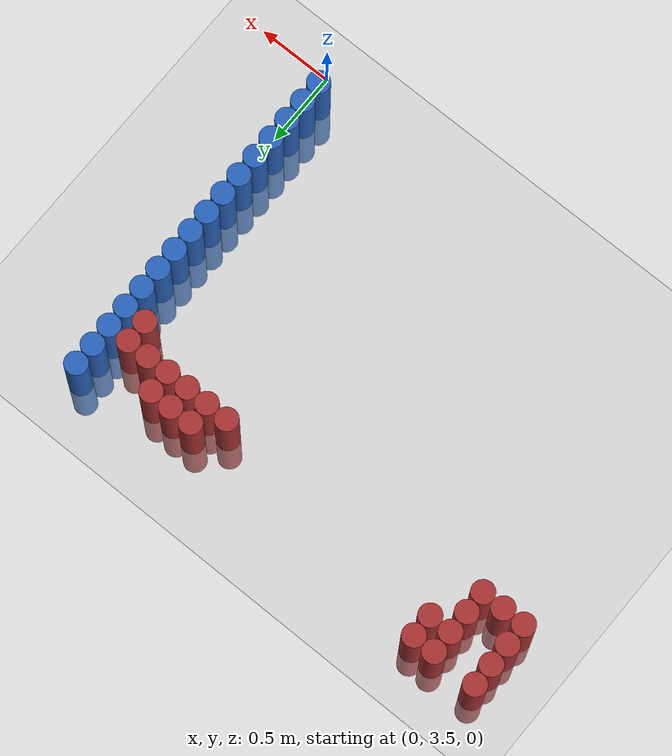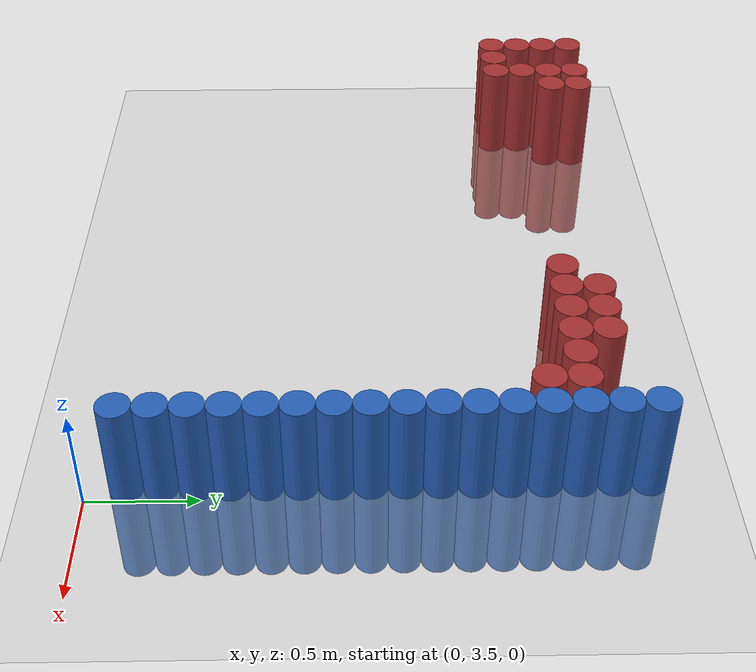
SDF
<sdf version="1.6">
 <world name="default">
  <model name="ground_plane">
   <static>1</static>
   <link name="link">
    <collision name="collision">
     <geometry><plane><normal>0 0 1</normal><size>100 100</size></plane></geometry>
     <surface><friction><ode><mu>100</mu><mu2>50</mu2></ode></friction></surface>
    </collision>
    <visual name="visual">
     <cast_shadows>0</cast_shadows>
     <geometry><plane><normal>0 0 1</normal><size>100 100</size></plane></geometry>
     <material>
      <script><uri>file://media/materials/scripts/gazebo.material</uri><name>Gazebo/Grey</name></script>
     </material>
    </visual>
   </link>
  </model>
  <model name="unit_cylinder_76">
   <static>1</static>
   <pose>-0.075000 3.675000 0.000000 0.000000 0.000000 0.000000</pose>
   <link name="link">
    <inertial>
     <mass>1</mass>
     <inertia><ixx>0.145833</ixx><ixy>0</ixy><ixz>0</ixz><iyy>0.145833</iyy><iyz>0</iyz><izz>0.125</izz></inertia>
    </inertial>
    <collision name="collision">
     <geometry><cylinder><radius>0.075000</radius><length>1</length></cylinder></geometry>
    </collision>
    <visual name="visual">
     <geometry><cylinder><radius>0.075000</radius><length>1</length></cylinder></geometry>
     <material>
      <ambient>0.152000 0.379000 0.720000 1</ambient>
      <diffuse>0.152000 0.379000 0.720000 1</diffuse>
     </material>
     <material>
      <script><name>Gazebo/Grey</name><uri>file://media/materials/scripts/gazebo.material</uri></script>
     </material>
    </visual>
    <sensor name="sensor_contact" type="contact"><contact><collision>collision</collision></contact></sensor>
   </link>
   <plugin filename="gz-sim-touchplugin-system" name="gz::sim::systems::TouchPlugin">
    <target>robot</target>
    <namespace>robot</namespace>
    <time>0.001</time>
    <enabled>true</enabled>
   </plugin>
  </model>
  <model name="unit_cylinder_78">
   <static>1</static>
   <pose>-0.075000 3.825000 0.000000 0.000000 0.000000 0.000000</pose>
   <link name="link">
    <inertial>
     <mass>1</mass>
     <inertia><ixx>0.145833</ixx><ixy>0</ixy><ixz>0</ixz><iyy>0.145833</iyy><iyz>0</iyz><izz>0.125</izz></inertia>
    </inertial>
    <collision name="collision">
     <geometry><cylinder><radius>0.075000</radius><length>1</length></cylinder></geometry>
    </collision>
    <visual name="visual">
     <geometry><cylinder><radius>0.075000</radius><length>1</length></cylinder></geometry>
     <material>
      <ambient>0.152000 0.379000 0.720000 1</ambient>
      <diffuse>0.152000 0.379000 0.720000 1</diffuse>
     </material>
     <material>
      <script><name>Gazebo/Grey</name><uri>file://media/materials/scripts/gazebo.material</uri></script>
     </material>
    </visual>
    <sensor name="sensor_contact" type="contact"><contact><collision>collision</collision></contact></sensor>
   </link>
   <plugin filename="gz-sim-touchplugin-system" name="gz::sim::systems::TouchPlugin">
    <target>robot</target>
    <namespace>robot</namespace>
    <time>0.001</time>
    <enabled>true</enabled>
   </plugin>
  </model>
  <model name="unit_cylinder_80">
   <static>1</static>
   <pose>-0.075000 3.975000 0.000000 0.000000 0.000000 0.000000</pose>
   <link name="link">
    <inertial>
     <mass>1</mass>
     <inertia><ixx>0.145833</ixx><ixy>0</ixy><ixz>0</ixz><iyy>0.145833</iyy><iyz>0</iyz><izz>0.125</izz></inertia>
    </inertial>
    <collision name="collision">
     <geometry><cylinder><radius>0.075000</radius><length>1</length></cylinder></geometry>
    </collision>
    <visual name="visual">
     <geometry><cylinder><radius>0.075000</radius><length>1</length></cylinder></geometry>
     <material>
      <ambient>0.152000 0.379000 0.720000 1</ambient>
      <diffuse>0.152000 0.379000 0.720000 1</diffuse>
     </material>
     <material>
      <script><name>Gazebo/Grey</name><uri>file://media/materials/scripts/gazebo.material</uri></script>
     </material>
    </visual>
    <sensor name="sensor_contact" type="contact"><contact><collision>collision</collision></contact></sensor>
   </link>
   <plugin filename="gz-sim-touchplugin-system" name="gz::sim::systems::TouchPlugin">
    <target>robot</target>
    <namespace>robot</namespace>
    <time>0.001</time>
    <enabled>true</enabled>
   </plugin>
  </model>
  <model name="unit_cylinder_82">
   <static>1</static>
   <pose>-0.075000 4.125000 0.000000 0.000000 0.000000 0.000000</pose>
   <link name="link">
    <inertial>
     <mass>1</mass>
     <inertia><ixx>0.145833</ixx><ixy>0</ixy><ixz>0</ixz><iyy>0.145833</iyy><iyz>0</iyz><izz>0.125</izz></inertia>
    </inertial>
    <collision name="collision">
     <geometry><cylinder><radius>0.075000</radius><length>1</length></cylinder></geometry>
    </collision>
    <visual name="visual">
     <geometry><cylinder><radius>0.075000</radius><length>1</length></cylinder></geometry>
     <material>
      <ambient>0.152000 0.379000 0.720000 1</ambient>
      <diffuse>0.152000 0.379000 0.720000 1</diffuse>
     </material>
     <material>
      <script><name>Gazebo/Grey</name><uri>file://media/materials/scripts/gazebo.material</uri></script>
     </material>
    </visual>
    <sensor name="sensor_contact" type="contact"><contact><collision>collision</collision></contact></sensor>
   </link>
   <plugin filename="gz-sim-touchplugin-system" name="gz::sim::systems::TouchPlugin">
    <target>robot</target>
    <namespace>robot</namespace>
    <time>0.001</time>
    <enabled>true</enabled>
   </plugin>
  </model>
  <model name="unit_cylinder_84">
   <static>1</static>
   <pose>-0.075000 4.275000 0.000000 0.000000 0.000000 0.000000</pose>
   <link name="link">
    <inertial>
     <mass>1</mass>
     <inertia><ixx>0.145833</ixx><ixy>0</ixy><ixz>0</ixz><iyy>0.145833</iyy><iyz>0</iyz><izz>0.125</izz></inertia>
    </inertial>
    <collision name="collision">
     <geometry><cylinder><radius>0.075000</radius><length>1</length></cylinder></geometry>
    </collision>
    <visual name="visual">
     <geometry><cylinder><radius>0.075000</radius><length>1</length></cylinder></geometry>
     <material>
      <ambient>0.152000 0.379000 0.720000 1</ambient>
      <diffuse>0.152000 0.379000 0.720000 1</diffuse>
     </material>
     <material>
      <script><name>Gazebo/Grey</name><uri>file://media/materials/scripts/gazebo.material</uri></script>
     </material>
    </visual>
    <sensor name="sensor_contact" type="contact"><contact><collision>collision</collision></contact></sensor>
   </link>
   <plugin filename="gz-sim-touchplugin-system" name="gz::sim::systems::TouchPlugin">
    <target>robot</target>
    <namespace>robot</namespace>
    <time>0.001</time>
    <enabled>true</enabled>
   </plugin>
  </model>
  <model name="unit_cylinder_86">
   <static>1</static>
   <pose>-0.075000 4.425000 0.000000 0.000000 0.000000 0.000000</pose>
   <link name="link">
    <inertial>
     <mass>1</mass>
     <inertia><ixx>0.145833</ixx><ixy>0</ixy><ixz>0</ixz><iyy>0.145833</iyy><iyz>0</iyz><izz>0.125</izz></inertia>
    </inertial>
    <collision name="collision">
     <geometry><cylinder><radius>0.075000</radius><length>1</length></cylinder></geometry>
    </collision>
    <visual name="visual">
     <geometry><cylinder><radius>0.075000</radius><length>1</length></cylinder></geometry>
     <material>
      <ambient>0.152000 0.379000 0.720000 1</ambient>
      <diffuse>0.152000 0.379000 0.720000 1</diffuse>
     </material>
     <material>
      <script><name>Gazebo/Grey</name><uri>file://media/materials/scripts/gazebo.material</uri></script>
     </material>
    </visual>
    <sensor name="sensor_contact" type="contact"><contact><collision>collision</collision></contact></sensor>
   </link>
   <plugin filename="gz-sim-touchplugin-system" name="gz::sim::systems::TouchPlugin">
    <target>robot</target>
    <namespace>robot</namespace>
    <time>0.001</time>
    <enabled>true</enabled>
   </plugin>
  </model>
  <model name="unit_cylinder_88">
   <static>1</static>
   <pose>-0.075000 4.575000 0.000000 0.000000 0.000000 0.000000</pose>
   <link name="link">
    <inertial>
     <mass>1</mass>
     <inertia><ixx>0.145833</ixx><ixy>0</ixy><ixz>0</ixz><iyy>0.145833</iyy><iyz>0</iyz><izz>0.125</izz></inertia>
    </inertial>
    <collision name="collision">
     <geometry><cylinder><radius>0.075000</radius><length>1</length></cylinder></geometry>
    </collision>
    <visual name="visual">
     <geometry><cylinder><radius>0.075000</radius><length>1</length></cylinder></geometry>
     <material>
      <ambient>0.152000 0.379000 0.720000 1</ambient>
      <diffuse>0.152000 0.379000 0.720000 1</diffuse>
     </material>
     <material>
      <script><name>Gazebo/Grey</name><uri>file://media/materials/scripts/gazebo.material</uri></script>
     </material>
    </visual>
    <sensor name="sensor_contact" type="contact"><contact><collision>collision</collision></contact></sensor>
   </link>
   <plugin filename="gz-sim-touchplugin-system" name="gz::sim::systems::TouchPlugin">
    <target>robot</target>
    <namespace>robot</namespace>
    <time>0.001</time>
    <enabled>true</enabled>
   </plugin>
  </model>
  <model name="unit_cylinder_90">
   <static>1</static>
   <pose>-0.075000 4.725000 0.000000 0.000000 0.000000 0.000000</pose>
   <link name="link">
    <inertial>
     <mass>1</mass>
     <inertia><ixx>0.145833</ixx><ixy>0</ixy><ixz>0</ixz><iyy>0.145833</iyy><iyz>0</iyz><izz>0.125</izz></inertia>
    </inertial>
    <collision name="collision">
     <geometry><cylinder><radius>0.075000</radius><length>1</length></cylinder></geometry>
    </collision>
    <visual name="visual">
     <geometry><cylinder><radius>0.075000</radius><length>1</length></cylinder></geometry>
     <material>
      <ambient>0.152000 0.379000 0.720000 1</ambient>
      <diffuse>0.152000 0.379000 0.720000 1</diffuse>
     </material>
     <material>
      <script><name>Gazebo/Grey</name><uri>file://media/materials/scripts/gazebo.material</uri></script>
     </material>
    </visual>
    <sensor name="sensor_contact" type="contact"><contact><collision>collision</collision></contact></sensor>
   </link>
   <plugin filename="gz-sim-touchplugin-system" name="gz::sim::systems::TouchPlugin">
    <target>robot</target>
    <namespace>robot</namespace>
    <time>0.001</time>
    <enabled>true</enabled>
   </plugin>
  </model>
  <model name="unit_cylinder_92">
   <static>1</static>
   <pose>-0.075000 4.875000 0.000000 0.000000 0.000000 0.000000</pose>
   <link name="link">
    <inertial>
     <mass>1</mass>
     <inertia><ixx>0.145833</ixx><ixy>0</ixy><ixz>0</ixz><iyy>0.145833</iyy><iyz>0</iyz><izz>0.125</izz></inertia>
    </inertial>
    <collision name="collision">
     <geometry><cylinder><radius>0.075000</radius><length>1</length></cylinder></geometry>
    </collision>
    <visual name="visual">
     <geometry><cylinder><radius>0.075000</radius><length>1</length></cylinder></geometry>
     <material>
      <ambient>0.152000 0.379000 0.720000 1</ambient>
      <diffuse>0.152000 0.379000 0.720000 1</diffuse>
     </material>
     <material>
      <script><name>Gazebo/Grey</name><uri>file://media/materials/scripts/gazebo.material</uri></script>
     </material>
    </visual>
    <sensor name="sensor_contact" type="contact"><contact><collision>collision</collision></contact></sensor>
   </link>
   <plugin filename="gz-sim-touchplugin-system" name="gz::sim::systems::TouchPlugin">
    <target>robot</target>
    <namespace>robot</namespace>
    <time>0.001</time>
    <enabled>true</enabled>
   </plugin>
  </model>
  <model name="unit_cylinder_94">
   <static>1</static>
   <pose>-0.075000 5.025000 0.000000 0.000000 0.000000 0.000000</pose>
   <link name="link">
    <inertial>
     <mass>1</mass>
     <inertia><ixx>0.145833</ixx><ixy>0</ixy><ixz>0</ixz><iyy>0.145833</iyy><iyz>0</iyz><izz>0.125</izz></inertia>
    </inertial>
    <collision name="collision">
     <geometry><cylinder><radius>0.075000</radius><length>1</length></cylinder></geometry>
    </collision>
    <visual name="visual">
     <geometry><cylinder><radius>0.075000</radius><length>1</length></cylinder></geometry>
     <material>
      <ambient>0.152000 0.379000 0.720000 1</ambient>
      <diffuse>0.152000 0.379000 0.720000 1</diffuse>
     </material>
     <material>
      <script><name>Gazebo/Grey</name><uri>file://media/materials/scripts/gazebo.material</uri></script>
     </material>
    </visual>
    <sensor name="sensor_contact" type="contact"><contact><collision>collision</collision></contact></sensor>
   </link>
   <plugin filename="gz-sim-touchplugin-system" name="gz::sim::systems::TouchPlugin">
    <target>robot</target>
    <namespace>robot</namespace>
    <time>0.001</time>
    <enabled>true</enabled>
   </plugin>
  </model>
  <model name="unit_cylinder_206">
   <static>1</static>
   <pose>-3.075000 5.475000 0.000000 0.000000 0.000000 0.000000</pose>
   <link name="link">
    <inertial>
     <mass>1</mass>
     <inertia><ixx>0.145833</ixx><ixy>0</ixy><ixz>0</ixz><iyy>0.145833</iyy><iyz>0</iyz><izz>0.125</izz></inertia>
    </inertial>
    <collision name="collision">
     <geometry><cylinder><radius>0.075000</radius><length>1</length></cylinder></geometry>
    </collision>
    <visual name="visual">
     <geometry><cylinder><radius>0.075000</radius><length>1</length></cylinder></geometry>
     <material>
      <ambient>0.648000 0.192000 0.192000 1</ambient>
      <diffuse>0.648000 0.192000 0.192000 1</diffuse>
     </material>
     <material>
      <script><name>Gazebo/Grey</name><uri>file://media/materials/scripts/gazebo.material</uri></script>
     </material>
    </visual>
    <sensor name="sensor_contact" type="contact"><contact><collision>collision</collision></contact></sensor>
   </link>
   <plugin filename="gz-sim-touchplugin-system" name="gz::sim::systems::TouchPlugin">
    <target>robot</target>
    <namespace>robot</namespace>
    <time>0.001</time>
    <enabled>true</enabled>
   </plugin>
  </model>
  <model name="unit_cylinder_207">
   <static>1</static>
   <pose>-3.075000 5.625000 0.000000 0.000000 0.000000 0.000000</pose>
   <link name="link">
    <inertial>
     <mass>1</mass>
     <inertia><ixx>0.145833</ixx><ixy>0</ixy><ixz>0</ixz><iyy>0.145833</iyy><iyz>0</iyz><izz>0.125</izz></inertia>
    </inertial>
    <collision name="collision">
     <geometry><cylinder><radius>0.075000</radius><length>1</length></cylinder></geometry>
    </collision>
    <visual name="visual">
     <geometry><cylinder><radius>0.075000</radius><length>1</length></cylinder></geometry>
     <material>
      <ambient>0.648000 0.192000 0.192000 1</ambient>
      <diffuse>0.648000 0.192000 0.192000 1</diffuse>
     </material>
     <material>
      <script><name>Gazebo/Grey</name><uri>file://media/materials/scripts/gazebo.material</uri></script>
     </material>
    </visual>
    <sensor name="sensor_contact" type="contact"><contact><collision>collision</collision></contact></sensor>
   </link>
   <plugin filename="gz-sim-touchplugin-system" name="gz::sim::systems::TouchPlugin">
    <target>robot</target>
    <namespace>robot</namespace>
    <time>0.001</time>
    <enabled>true</enabled>
   </plugin>
  </model>
  <model name="unit_cylinder_208">
   <static>1</static>
   <pose>-3.075000 5.775000 0.000000 0.000000 0.000000 0.000000</pose>
   <link name="link">
    <inertial>
     <mass>1</mass>
     <inertia><ixx>0.145833</ixx><ixy>0</ixy><ixz>0</ixz><iyy>0.145833</iyy><iyz>0</iyz><izz>0.125</izz></inertia>
    </inertial>
    <collision name="collision">
     <geometry><cylinder><radius>0.075000</radius><length>1</length></cylinder></geometry>
    </collision>
    <visual name="visual">
     <geometry><cylinder><radius>0.075000</radius><length>1</length></cylinder></geometry>
     <material>
      <ambient>0.648000 0.192000 0.192000 1</ambient>
      <diffuse>0.648000 0.192000 0.192000 1</diffuse>
     </material>
     <material>
      <script><name>Gazebo/Grey</name><uri>file://media/materials/scripts/gazebo.material</uri></script>
     </material>
    </visual>
    <sensor name="sensor_contact" type="contact"><contact><collision>collision</collision></contact></sensor>
   </link>
   <plugin filename="gz-sim-touchplugin-system" name="gz::sim::systems::TouchPlugin">
    <target>robot</target>
    <namespace>robot</namespace>
    <time>0.001</time>
    <enabled>true</enabled>
   </plugin>
  </model>
  <model name="unit_cylinder_209">
   <static>1</static>
   <pose>-3.075000 5.925000 0.000000 0.000000 0.000000 0.000000</pose>
   <link name="link">
    <inertial>
     <mass>1</mass>
     <inertia><ixx>0.145833</ixx><ixy>0</ixy><ixz>0</ixz><iyy>0.145833</iyy><iyz>0</iyz><izz>0.125</izz></inertia>
    </inertial>
    <collision name="collision">
     <geometry><cylinder><radius>0.075000</radius><length>1</length></cylinder></geometry>
    </collision>
    <visual name="visual">
     <geometry><cylinder><radius>0.075000</radius><length>1</length></cylinder></geometry>
     <material>
      <ambient>0.648000 0.192000 0.192000 1</ambient>
      <diffuse>0.648000 0.192000 0.192000 1</diffuse>
     </material>
     <material>
      <script><name>Gazebo/Grey</name><uri>file://media/materials/scripts/gazebo.material</uri></script>
     </material>
    </visual>
    <sensor name="sensor_contact" type="contact"><contact><collision>collision</collision></contact></sensor>
   </link>
   <plugin filename="gz-sim-touchplugin-system" name="gz::sim::systems::TouchPlugin">
    <target>robot</target>
    <namespace>robot</namespace>
    <time>0.001</time>
    <enabled>true</enabled>
   </plugin>
  </model>
  <model name="unit_cylinder_215">
   <static>1</static>
   <pose>-2.925000 5.475000 0.000000 0.000000 0.000000 0.000000</pose>
   <link name="link">
    <inertial>
     <mass>1</mass>
     <inertia><ixx>0.145833</ixx><ixy>0</ixy><ixz>0</ixz><iyy>0.145833</iyy><iyz>0</iyz><izz>0.125</izz></inertia>
    </inertial>
    <collision name="collision">
     <geometry><cylinder><radius>0.075000</radius><length>1</length></cylinder></geometry>
    </collision>
    <visual name="visual">
     <geometry><cylinder><radius>0.075000</radius><length>1</length></cylinder></geometry>
     <material>
      <ambient>0.648000 0.192000 0.192000 1</ambient>
      <diffuse>0.648000 0.192000 0.192000 1</diffuse>
     </material>
     <material>
      <script><name>Gazebo/Grey</name><uri>file://media/materials/scripts/gazebo.material</uri></script>
     </material>
    </visual>
    <sensor name="sensor_contact" type="contact"><contact><collision>collision</collision></contact></sensor>
   </link>
   <plugin filename="gz-sim-touchplugin-system" name="gz::sim::systems::TouchPlugin">
    <target>robot</target>
    <namespace>robot</namespace>
    <time>0.001</time>
    <enabled>true</enabled>
   </plugin>
  </model>
  <model name="unit_cylinder_223">
   <static>1</static>
   <pose>-2.775000 5.475000 0.000000 0.000000 0.000000 0.000000</pose>
   <link name="link">
    <inertial>
     <mass>1</mass>
     <inertia><ixx>0.145833</ixx><ixy>0</ixy><ixz>0</ixz><iyy>0.145833</iyy><iyz>0</iyz><izz>0.125</izz></inertia>
    </inertial>
    <collision name="collision">
     <geometry><cylinder><radius>0.075000</radius><length>1</length></cylinder></geometry>
    </collision>
    <visual name="visual">
     <geometry><cylinder><radius>0.075000</radius><length>1</length></cylinder></geometry>
     <material>
      <ambient>0.648000 0.192000 0.192000 1</ambient>
      <diffuse>0.648000 0.192000 0.192000 1</diffuse>
     </material>
     <material>
      <script><name>Gazebo/Grey</name><uri>file://media/materials/scripts/gazebo.material</uri></script>
     </material>
    </visual>
    <sensor name="sensor_contact" type="contact"><contact><collision>collision</collision></contact></sensor>
   </link>
   <plugin filename="gz-sim-touchplugin-system" name="gz::sim::systems::TouchPlugin">
    <target>robot</target>
    <namespace>robot</namespace>
    <time>0.001</time>
    <enabled>true</enabled>
   </plugin>
  </model>
  <model name="unit_cylinder_224">
   <static>1</static>
   <pose>-2.775000 5.625000 0.000000 0.000000 0.000000 0.000000</pose>
   <link name="link">
    <inertial>
     <mass>1</mass>
     <inertia><ixx>0.145833</ixx><ixy>0</ixy><ixz>0</ixz><iyy>0.145833</iyy><iyz>0</iyz><izz>0.125</izz></inertia>
    </inertial>
    <collision name="collision">
     <geometry><cylinder><radius>0.075000</radius><length>1</length></cylinder></geometry>
    </collision>
    <visual name="visual">
     <geometry><cylinder><radius>0.075000</radius><length>1</length></cylinder></geometry>
     <material>
      <ambient>0.648000 0.192000 0.192000 1</ambient>
      <diffuse>0.648000 0.192000 0.192000 1</diffuse>
     </material>
     <material>
      <script><name>Gazebo/Grey</name><uri>file://media/materials/scripts/gazebo.material</uri></script>
     </material>
    </visual>
    <sensor name="sensor_contact" type="contact"><contact><collision>collision</collision></contact></sensor>
   </link>
   <plugin filename="gz-sim-touchplugin-system" name="gz::sim::systems::TouchPlugin">
    <target>robot</target>
    <namespace>robot</namespace>
    <time>0.001</time>
    <enabled>true</enabled>
   </plugin>
  </model>
  <model name="unit_cylinder_225">
   <static>1</static>
   <pose>-2.775000 5.775000 0.000000 0.000000 0.000000 0.000000</pose>
   <link name="link">
    <inertial>
     <mass>1</mass>
     <inertia><ixx>0.145833</ixx><ixy>0</ixy><ixz>0</ixz><iyy>0.145833</iyy><iyz>0</iyz><izz>0.125</izz></inertia>
    </inertial>
    <collision name="collision">
     <geometry><cylinder><radius>0.075000</radius><length>1</length></cylinder></geometry>
    </collision>
    <visual name="visual">
     <geometry><cylinder><radius>0.075000</radius><length>1</length></cylinder></geometry>
     <material>
      <ambient>0.648000 0.192000 0.192000 1</ambient>
      <diffuse>0.648000 0.192000 0.192000 1</diffuse>
     </material>
     <material>
      <script><name>Gazebo/Grey</name><uri>file://media/materials/scripts/gazebo.material</uri></script>
     </material>
    </visual>
    <sensor name="sensor_contact" type="contact"><contact><collision>collision</collision></contact></sensor>
   </link>
   <plugin filename="gz-sim-touchplugin-system" name="gz::sim::systems::TouchPlugin">
    <target>robot</target>
    <namespace>robot</namespace>
    <time>0.001</time>
    <enabled>true</enabled>
   </plugin>
  </model>
  <model name="unit_cylinder_226">
   <static>1</static>
   <pose>-2.775000 5.925000 0.000000 0.000000 0.000000 0.000000</pose>
   <link name="link">
    <inertial>
     <mass>1</mass>
     <inertia><ixx>0.145833</ixx><ixy>0</ixy><ixz>0</ixz><iyy>0.145833</iyy><iyz>0</iyz><izz>0.125</izz></inertia>
    </inertial>
    <collision name="collision">
     <geometry><cylinder><radius>0.075000</radius><length>1</length></cylinder></geometry>
    </collision>
    <visual name="visual">
     <geometry><cylinder><radius>0.075000</radius><length>1</length></cylinder></geometry>
     <material>
      <ambient>0.648000 0.192000 0.192000 1</ambient>
      <diffuse>0.648000 0.192000 0.192000 1</diffuse>
     </material>
     <material>
      <script><name>Gazebo/Grey</name><uri>file://media/materials/scripts/gazebo.material</uri></script>
     </material>
    </visual>
    <sensor name="sensor_contact" type="contact"><contact><collision>collision</collision></contact></sensor>
   </link>
   <plugin filename="gz-sim-touchplugin-system" name="gz::sim::systems::TouchPlugin">
    <target>robot</target>
    <namespace>robot</namespace>
    <time>0.001</time>
    <enabled>true</enabled>
   </plugin>
  </model>
  <model name="unit_cylinder_233">
   <static>1</static>
   <pose>-2.625000 5.775000 0.000000 0.000000 0.000000 0.000000</pose>
   <link name="link">
    <inertial>
     <mass>1</mass>
     <inertia><ixx>0.145833</ixx><ixy>0</ixy><ixz>0</ixz><iyy>0.145833</iyy><iyz>0</iyz><izz>0.125</izz></inertia>
    </inertial>
    <collision name="collision">
     <geometry><cylinder><radius>0.075000</radius><length>1</length></cylinder></geometry>
    </collision>
    <visual name="visual">
     <geometry><cylinder><radius>0.075000</radius><length>1</length></cylinder></geometry>
     <material>
      <ambient>0.648000 0.192000 0.192000 1</ambient>
      <diffuse>0.648000 0.192000 0.192000 1</diffuse>
     </material>
     <material>
      <script><name>Gazebo/Grey</name><uri>file://media/materials/scripts/gazebo.material</uri></script>
     </material>
    </visual>
    <sensor name="sensor_contact" type="contact"><contact><collision>collision</collision></contact></sensor>
   </link>
   <plugin filename="gz-sim-touchplugin-system" name="gz::sim::systems::TouchPlugin">
    <target>robot</target>
    <namespace>robot</namespace>
    <time>0.001</time>
    <enabled>true</enabled>
   </plugin>
  </model>
  <model name="unit_cylinder_234">
   <static>1</static>
   <pose>-2.625000 5.925000 0.000000 0.000000 0.000000 0.000000</pose>
   <link name="link">
    <inertial>
     <mass>1</mass>
     <inertia><ixx>0.145833</ixx><ixy>0</ixy><ixz>0</ixz><iyy>0.145833</iyy><iyz>0</iyz><izz>0.125</izz></inertia>
    </inertial>
    <collision name="collision">
     <geometry><cylinder><radius>0.075000</radius><length>1</length></cylinder></geometry>
    </collision>
    <visual name="visual">
     <geometry><cylinder><radius>0.075000</radius><length>1</length></cylinder></geometry>
     <material>
      <ambient>0.648000 0.192000 0.192000 1</ambient>
      <diffuse>0.648000 0.192000 0.192000 1</diffuse>
     </material>
     <material>
      <script><name>Gazebo/Grey</name><uri>file://media/materials/scripts/gazebo.material</uri></script>
     </material>
    </visual>
    <sensor name="sensor_contact" type="contact"><contact><collision>collision</collision></contact></sensor>
   </link>
   <plugin filename="gz-sim-touchplugin-system" name="gz::sim::systems::TouchPlugin">
    <target>robot</target>
    <namespace>robot</namespace>
    <time>0.001</time>
    <enabled>true</enabled>
   </plugin>
  </model>
  <model name="unit_cylinder_255">
   <static>1</static>
   <pose>-0.975000 5.625000 0.000000 0.000000 0.000000 0.000000</pose>
   <link name="link">
    <inertial>
     <mass>1</mass>
     <inertia><ixx>0.145833</ixx><ixy>0</ixy><ixz>0</ixz><iyy>0.145833</iyy><iyz>0</iyz><izz>0.125</izz></inertia>
    </inertial>
    <collision name="collision">
     <geometry><cylinder><radius>0.075000</radius><length>1</length></cylinder></geometry>
    </collision>
    <visual name="visual">
     <geometry><cylinder><radius>0.075000</radius><length>1</length></cylinder></geometry>
     <material>
      <ambient>0.648000 0.192000 0.192000 1</ambient>
      <diffuse>0.648000 0.192000 0.192000 1</diffuse>
     </material>
     <material>
      <script><name>Gazebo/Grey</name><uri>file://media/materials/scripts/gazebo.material</uri></script>
     </material>
    </visual>
    <sensor name="sensor_contact" type="contact"><contact><collision>collision</collision></contact></sensor>
   </link>
   <plugin filename="gz-sim-touchplugin-system" name="gz::sim::systems::TouchPlugin">
    <target>robot</target>
    <namespace>robot</namespace>
    <time>0.001</time>
    <enabled>true</enabled>
   </plugin>
  </model>
  <model name="unit_cylinder_257">
   <static>1</static>
   <pose>-0.825000 5.625000 0.000000 0.000000 0.000000 0.000000</pose>
   <link name="link">
    <inertial>
     <mass>1</mass>
     <inertia><ixx>0.145833</ixx><ixy>0</ixy><ixz>0</ixz><iyy>0.145833</iyy><iyz>0</iyz><izz>0.125</izz></inertia>
    </inertial>
    <collision name="collision">
     <geometry><cylinder><radius>0.075000</radius><length>1</length></cylinder></geometry>
    </collision>
    <visual name="visual">
     <geometry><cylinder><radius>0.075000</radius><length>1</length></cylinder></geometry>
     <material>
      <ambient>0.648000 0.192000 0.192000 1</ambient>
      <diffuse>0.648000 0.192000 0.192000 1</diffuse>
     </material>
     <material>
      <script><name>Gazebo/Grey</name><uri>file://media/materials/scripts/gazebo.material</uri></script>
     </material>
    </visual>
    <sensor name="sensor_contact" type="contact"><contact><collision>collision</collision></contact></sensor>
   </link>
   <plugin filename="gz-sim-touchplugin-system" name="gz::sim::systems::TouchPlugin">
    <target>robot</target>
    <namespace>robot</namespace>
    <time>0.001</time>
    <enabled>true</enabled>
   </plugin>
  </model>
  <model name="unit_cylinder_258">
   <static>1</static>
   <pose>-0.825000 5.775000 0.000000 0.000000 0.000000 0.000000</pose>
   <link name="link">
    <inertial>
     <mass>1</mass>
     <inertia><ixx>0.145833</ixx><ixy>0</ixy><ixz>0</ixz><iyy>0.145833</iyy><iyz>0</iyz><izz>0.125</izz></inertia>
    </inertial>
    <collision name="collision">
     <geometry><cylinder><radius>0.075000</radius><length>1</length></cylinder></geometry>
    </collision>
    <visual name="visual">
     <geometry><cylinder><radius>0.075000</radius><length>1</length></cylinder></geometry>
     <material>
      <ambient>0.648000 0.192000 0.192000 1</ambient>
      <diffuse>0.648000 0.192000 0.192000 1</diffuse>
     </material>
     <material>
      <script><name>Gazebo/Grey</name><uri>file://media/materials/scripts/gazebo.material</uri></script>
     </material>
    </visual>
    <sensor name="sensor_contact" type="contact"><contact><collision>collision</collision></contact></sensor>
   </link>
   <plugin filename="gz-sim-touchplugin-system" name="gz::sim::systems::TouchPlugin">
    <target>robot</target>
    <namespace>robot</namespace>
    <time>0.001</time>
    <enabled>true</enabled>
   </plugin>
  </model>
  <model name="unit_cylinder_264">
   <static>1</static>
   <pose>-0.675000 5.625000 0.000000 0.000000 0.000000 0.000000</pose>
   <link name="link">
    <inertial>
     <mass>1</mass>
     <inertia><ixx>0.145833</ixx><ixy>0</ixy><ixz>0</ixz><iyy>0.145833</iyy><iyz>0</iyz><izz>0.125</izz></inertia>
    </inertial>
    <collision name="collision">
     <geometry><cylinder><radius>0.075000</radius><length>1</length></cylinder></geometry>
    </collision>
    <visual name="visual">
     <geometry><cylinder><radius>0.075000</radius><length>1</length></cylinder></geometry>
     <material>
      <ambient>0.648000 0.192000 0.192000 1</ambient>
      <diffuse>0.648000 0.192000 0.192000 1</diffuse>
     </material>
     <material>
      <script><name>Gazebo/Grey</name><uri>file://media/materials/scripts/gazebo.material</uri></script>
     </material>
    </visual>
    <sensor name="sensor_contact" type="contact"><contact><collision>collision</collision></contact></sensor>
   </link>
   <plugin filename="gz-sim-touchplugin-system" name="gz::sim::systems::TouchPlugin">
    <target>robot</target>
    <namespace>robot</namespace>
    <time>0.001</time>
    <enabled>true</enabled>
   </plugin>
  </model>
  <model name="unit_cylinder_265">
   <static>1</static>
   <pose>-0.675000 5.775000 0.000000 0.000000 0.000000 0.000000</pose>
   <link name="link">
    <inertial>
     <mass>1</mass>
     <inertia><ixx>0.145833</ixx><ixy>0</ixy><ixz>0</ixz><iyy>0.145833</iyy><iyz>0</iyz><izz>0.125</izz></inertia>
    </inertial>
    <collision name="collision">
     <geometry><cylinder><radius>0.075000</radius><length>1</length></cylinder></geometry>
    </collision>
    <visual name="visual">
     <geometry><cylinder><radius>0.075000</radius><length>1</length></cylinder></geometry>
     <material>
      <ambient>0.648000 0.192000 0.192000 1</ambient>
      <diffuse>0.648000 0.192000 0.192000 1</diffuse>
     </material>
     <material>
      <script><name>Gazebo/Grey</name><uri>file://media/materials/scripts/gazebo.material</uri></script>
     </material>
    </visual>
    <sensor name="sensor_contact" type="contact"><contact><collision>collision</collision></contact></sensor>
   </link>
   <plugin filename="gz-sim-touchplugin-system" name="gz::sim::systems::TouchPlugin">
    <target>robot</target>
    <namespace>robot</namespace>
    <time>0.001</time>
    <enabled>true</enabled>
   </plugin>
  </model>
  <model name="unit_cylinder_272">
   <static>1</static>
   <pose>-0.525000 5.625000 0.000000 0.000000 0.000000 0.000000</pose>
   <link name="link">
    <inertial>
     <mass>1</mass>
     <inertia><ixx>0.145833</ixx><ixy>0</ixy><ixz>0</ixz><iyy>0.145833</iyy><iyz>0</iyz><izz>0.125</izz></inertia>
    </inertial>
    <collision name="collision">
     <geometry><cylinder><radius>0.075000</radius><length>1</length></cylinder></geometry>
    </collision>
    <visual name="visual">
     <geometry><cylinder><radius>0.075000</radius><length>1</length></cylinder></geometry>
     <material>
      <ambient>0.648000 0.192000 0.192000 1</ambient>
      <diffuse>0.648000 0.192000 0.192000 1</diffuse>
     </material>
     <material>
      <script><name>Gazebo/Grey</name><uri>file://media/materials/scripts/gazebo.material</uri></script>
     </material>
    </visual>
    <sensor name="sensor_contact" type="contact"><contact><collision>collision</collision></contact></sensor>
   </link>
   <plugin filename="gz-sim-touchplugin-system" name="gz::sim::systems::TouchPlugin">
    <target>robot</target>
    <namespace>robot</namespace>
    <time>0.001</time>
    <enabled>true</enabled>
   </plugin>
  </model>
  <model name="unit_cylinder_273">
   <static>1</static>
   <pose>-0.525000 5.775000 0.000000 0.000000 0.000000 0.000000</pose>
   <link name="link">
    <inertial>
     <mass>1</mass>
     <inertia><ixx>0.145833</ixx><ixy>0</ixy><ixz>0</ixz><iyy>0.145833</iyy><iyz>0</iyz><izz>0.125</izz></inertia>
    </inertial>
    <collision name="collision">
     <geometry><cylinder><radius>0.075000</radius><length>1</length></cylinder></geometry>
    </collision>
    <visual name="visual">
     <geometry><cylinder><radius>0.075000</radius><length>1</length></cylinder></geometry>
     <material>
      <ambient>0.648000 0.192000 0.192000 1</ambient>
      <diffuse>0.648000 0.192000 0.192000 1</diffuse>
     </material>
     <material>
      <script><name>Gazebo/Grey</name><uri>file://media/materials/scripts/gazebo.material</uri></script>
     </material>
    </visual>
    <sensor name="sensor_contact" type="contact"><contact><collision>collision</collision></contact></sensor>
   </link>
   <plugin filename="gz-sim-touchplugin-system" name="gz::sim::systems::TouchPlugin">
    <target>robot</target>
    <namespace>robot</namespace>
    <time>0.001</time>
    <enabled>true</enabled>
   </plugin>
  </model>
  <model name="unit_cylinder_281">
   <static>1</static>
   <pose>-0.375000 5.625000 0.000000 0.000000 0.000000 0.000000</pose>
   <link name="link">
    <inertial>
     <mass>1</mass>
     <inertia><ixx>0.145833</ixx><ixy>0</ixy><ixz>0</ixz><iyy>0.145833</iyy><iyz>0</iyz><izz>0.125</izz></inertia>
    </inertial>
    <collision name="collision">
     <geometry><cylinder><radius>0.075000</radius><length>1</length></cylinder></geometry>
    </collision>
    <visual name="visual">
     <geometry><cylinder><radius>0.075000</radius><length>1</length></cylinder></geometry>
     <material>
      <ambient>0.648000 0.192000 0.192000 1</ambient>
      <diffuse>0.648000 0.192000 0.192000 1</diffuse>
     </material>
     <material>
      <script><name>Gazebo/Grey</name><uri>file://media/materials/scripts/gazebo.material</uri></script>
     </material>
    </visual>
    <sensor name="sensor_contact" type="contact"><contact><collision>collision</collision></contact></sensor>
   </link>
   <plugin filename="gz-sim-touchplugin-system" name="gz::sim::systems::TouchPlugin">
    <target>robot</target>
    <namespace>robot</namespace>
    <time>0.001</time>
    <enabled>true</enabled>
   </plugin>
  </model>
  <model name="unit_cylinder_292">
   <static>1</static>
   <pose>-0.225000 5.475000 0.000000 0.000000 0.000000 0.000000</pose>
   <link name="link">
    <inertial>
     <mass>1</mass>
     <inertia><ixx>0.145833</ixx><ixy>0</ixy><ixz>0</ixz><iyy>0.145833</iyy><iyz>0</iyz><izz>0.125</izz></inertia>
    </inertial>
    <collision name="collision">
     <geometry><cylinder><radius>0.075000</radius><length>1</length></cylinder></geometry>
    </collision>
    <visual name="visual">
     <geometry><cylinder><radius>0.075000</radius><length>1</length></cylinder></geometry>
     <material>
      <ambient>0.648000 0.192000 0.192000 1</ambient>
      <diffuse>0.648000 0.192000 0.192000 1</diffuse>
     </material>
     <material>
      <script><name>Gazebo/Grey</name><uri>file://media/materials/scripts/gazebo.material</uri></script>
     </material>
    </visual>
    <sensor name="sensor_contact" type="contact"><contact><collision>collision</collision></contact></sensor>
   </link>
   <plugin filename="gz-sim-touchplugin-system" name="gz::sim::systems::TouchPlugin">
    <target>robot</target>
    <namespace>robot</namespace>
    <time>0.001</time>
    <enabled>true</enabled>
   </plugin>
  </model>
  <model name="unit_cylinder_293">
   <static>1</static>
   <pose>-0.225000 5.625000 0.000000 0.000000 0.000000 0.000000</pose>
   <link name="link">
    <inertial>
     <mass>1</mass>
     <inertia><ixx>0.145833</ixx><ixy>0</ixy><ixz>0</ixz><iyy>0.145833</iyy><iyz>0</iyz><izz>0.125</izz></inertia>
    </inertial>
    <collision name="collision">
     <geometry><cylinder><radius>0.075000</radius><length>1</length></cylinder></geometry>
    </collision>
    <visual name="visual">
     <geometry><cylinder><radius>0.075000</radius><length>1</length></cylinder></geometry>
     <material>
      <ambient>0.648000 0.192000 0.192000 1</ambient>
      <diffuse>0.648000 0.192000 0.192000 1</diffuse>
     </material>
     <material>
      <script><name>Gazebo/Grey</name><uri>file://media/materials/scripts/gazebo.material</uri></script>
     </material>
    </visual>
    <sensor name="sensor_contact" type="contact"><contact><collision>collision</collision></contact></sensor>
   </link>
   <plugin filename="gz-sim-touchplugin-system" name="gz::sim::systems::TouchPlugin">
    <target>robot</target>
    <namespace>robot</namespace>
    <time>0.001</time>
    <enabled>true</enabled>
   </plugin>
  </model>
  <model name="unit_cylinder_308">
   <static>1</static>
   <pose>-0.075000 5.175000 0.000000 0.000000 0.000000 0.000000</pose>
   <link name="link">
    <inertial>
     <mass>1</mass>
     <inertia><ixx>0.145833</ixx><ixy>0</ixy><ixz>0</ixz><iyy>0.145833</iyy><iyz>0</iyz><izz>0.125</izz></inertia>
    </inertial>
    <collision name="collision">
     <geometry><cylinder><radius>0.075000</radius><length>1</length></cylinder></geometry>
    </collision>
    <visual name="visual">
     <geometry><cylinder><radius>0.075000</radius><length>1</length></cylinder></geometry>
     <material>
      <ambient>0.152000 0.379000 0.720000 1</ambient>
      <diffuse>0.152000 0.379000 0.720000 1</diffuse>
     </material>
     <material>
      <script><name>Gazebo/Grey</name><uri>file://media/materials/scripts/gazebo.material</uri></script>
     </material>
    </visual>
    <sensor name="sensor_contact" type="contact"><contact><collision>collision</collision></contact></sensor>
   </link>
   <plugin filename="gz-sim-touchplugin-system" name="gz::sim::systems::TouchPlugin">
    <target>robot</target>
    <namespace>robot</namespace>
    <time>0.001</time>
    <enabled>true</enabled>
   </plugin>
  </model>
  <model name="unit_cylinder_309">
   <static>1</static>
   <pose>-0.075000 5.325000 0.000000 0.000000 0.000000 0.000000</pose>
   <link name="link">
    <inertial>
     <mass>1</mass>
     <inertia><ixx>0.145833</ixx><ixy>0</ixy><ixz>0</ixz><iyy>0.145833</iyy><iyz>0</iyz><izz>0.125</izz></inertia>
    </inertial>
    <collision name="collision">
     <geometry><cylinder><radius>0.075000</radius><length>1</length></cylinder></geometry>
    </collision>
    <visual name="visual">
     <geometry><cylinder><radius>0.075000</radius><length>1</length></cylinder></geometry>
     <material>
      <ambient>0.152000 0.379000 0.720000 1</ambient>
      <diffuse>0.152000 0.379000 0.720000 1</diffuse>
     </material>
     <material>
      <script><name>Gazebo/Grey</name><uri>file://media/materials/scripts/gazebo.material</uri></script>
     </material>
    </visual>
    <sensor name="sensor_contact" type="contact"><contact><collision>collision</collision></contact></sensor>
   </link>
   <plugin filename="gz-sim-touchplugin-system" name="gz::sim::systems::TouchPlugin">
    <target>robot</target>
    <namespace>robot</namespace>
    <time>0.001</time>
    <enabled>true</enabled>
   </plugin>
  </model>
  <model name="unit_cylinder_310">
   <static>1</static>
   <pose>-0.075000 5.475000 0.000000 0.000000 0.000000 0.000000</pose>
   <link name="link">
    <inertial>
     <mass>1</mass>
     <inertia><ixx>0.145833</ixx><ixy>0</ixy><ixz>0</ixz><iyy>0.145833</iyy><iyz>0</iyz><izz>0.125</izz></inertia>
    </inertial>
    <collision name="collision">
     <geometry><cylinder><radius>0.075000</radius><length>1</length></cylinder></geometry>
    </collision>
    <visual name="visual">
     <geometry><cylinder><radius>0.075000</radius><length>1</length></cylinder></geometry>
     <material>
      <ambient>0.152000 0.379000 0.720000 1</ambient>
      <diffuse>0.152000 0.379000 0.720000 1</diffuse>
     </material>
     <material>
      <script><name>Gazebo/Grey</name><uri>file://media/materials/scripts/gazebo.material</uri></script>
     </material>
    </visual>
    <sensor name="sensor_contact" type="contact"><contact><collision>collision</collision></contact></sensor>
   </link>
   <plugin filename="gz-sim-touchplugin-system" name="gz::sim::systems::TouchPlugin">
    <target>robot</target>
    <namespace>robot</namespace>
    <time>0.001</time>
    <enabled>true</enabled>
   </plugin>
  </model>
  <model name="unit_cylinder_311">
   <static>1</static>
   <pose>-0.075000 5.625000 0.000000 0.000000 0.000000 0.000000</pose>
   <link name="link">
    <inertial>
     <mass>1</mass>
     <inertia><ixx>0.145833</ixx><ixy>0</ixy><ixz>0</ixz><iyy>0.145833</iyy><iyz>0</iyz><izz>0.125</izz></inertia>
    </inertial>
    <collision name="collision">
     <geometry><cylinder><radius>0.075000</radius><length>1</length></cylinder></geometry>
    </collision>
    <visual name="visual">
     <geometry><cylinder><radius>0.075000</radius><length>1</length></cylinder></geometry>
     <material>
      <ambient>0.152000 0.379000 0.720000 1</ambient>
      <diffuse>0.152000 0.379000 0.720000 1</diffuse>
     </material>
     <material>
      <script><name>Gazebo/Grey</name><uri>file://media/materials/scripts/gazebo.material</uri></script>
     </material>
    </visual>
    <sensor name="sensor_contact" type="contact"><contact><collision>collision</collision></contact></sensor>
   </link>
   <plugin filename="gz-sim-touchplugin-system" name="gz::sim::systems::TouchPlugin">
    <target>robot</target>
    <namespace>robot</namespace>
    <time>0.001</time>
    <enabled>true</enabled>
   </plugin>
  </model>
  <model name="unit_cylinder_312">
   <static>1</static>
   <pose>-0.075000 5.775000 0.000000 0.000000 0.000000 0.000000</pose>
   <link name="link">
    <inertial>
     <mass>1</mass>
     <inertia><ixx>0.145833</ixx><ixy>0</ixy><ixz>0</ixz><iyy>0.145833</iyy><iyz>0</iyz><izz>0.125</izz></inertia>
    </inertial>
    <collision name="collision">
     <geometry><cylinder><radius>0.075000</radius><length>1</length></cylinder></geometry>
    </collision>
    <visual name="visual">
     <geometry><cylinder><radius>0.075000</radius><length>1</length></cylinder></geometry>
     <material>
      <ambient>0.152000 0.379000 0.720000 1</ambient>
      <diffuse>0.152000 0.379000 0.720000 1</diffuse>
     </material>
     <material>
      <script><name>Gazebo/Grey</name><uri>file://media/materials/scripts/gazebo.material</uri></script>
     </material>
    </visual>
    <sensor name="sensor_contact" type="contact"><contact><collision>collision</collision></contact></sensor>
   </link>
   <plugin filename="gz-sim-touchplugin-system" name="gz::sim::systems::TouchPlugin">
    <target>robot</target>
    <namespace>robot</namespace>
    <time>0.001</time>
    <enabled>true</enabled>
   </plugin>
  </model>
  <model name="unit_cylinder_313">
   <static>1</static>
   <pose>-0.075000 5.925000 0.000000 0.000000 0.000000 0.000000</pose>
   <link name="link">
    <inertial>
     <mass>1</mass>
     <inertia><ixx>0.145833</ixx><ixy>0</ixy><ixz>0</ixz><iyy>0.145833</iyy><iyz>0</iyz><izz>0.125</izz></inertia>
    </inertial>
    <collision name="collision">
     <geometry><cylinder><radius>0.075000</radius><length>1</length></cylinder></geometry>
    </collision>
    <visual name="visual">
     <geometry><cylinder><radius>0.075000</radius><length>1</length></cylinder></geometry>
     <material>
      <ambient>0.152000 0.379000 0.720000 1</ambient>
      <diffuse>0.152000 0.379000 0.720000 1</diffuse>
     </material>
     <material>
      <script><name>Gazebo/Grey</name><uri>file://media/materials/scripts/gazebo.material</uri></script>
     </material>
    </visual>
    <sensor name="sensor_contact" type="contact"><contact><collision>collision</collision></contact></sensor>
   </link>
   <plugin filename="gz-sim-touchplugin-system" name="gz::sim::systems::TouchPlugin">
    <target>robot</target>
    <namespace>robot</namespace>
    <time>0.001</time>
    <enabled>true</enabled>
   </plugin>
  </model>
 </world>
</sdf>
